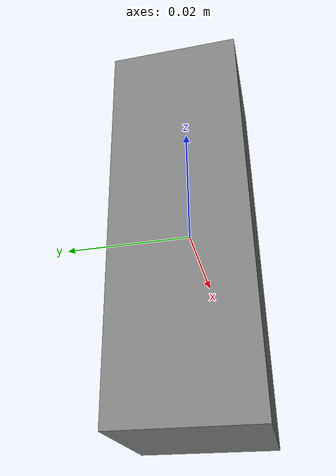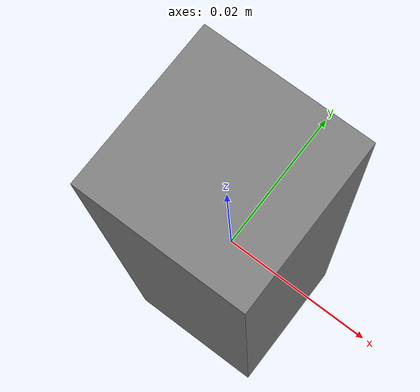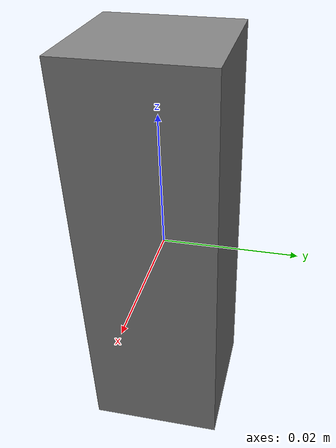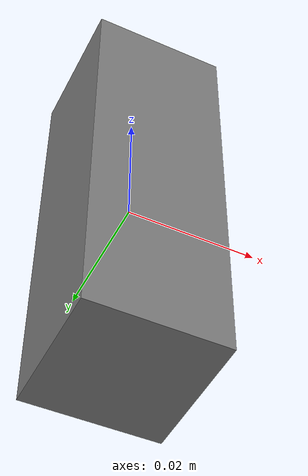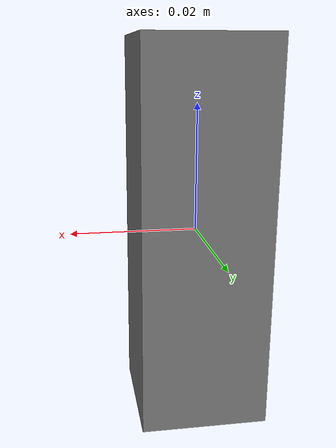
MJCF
<mujoco model="object"><option gravity="0 0 -9.81" timestep="0.001"/><worldbody><body name="body"><freejoint name="root"/><inertial pos="0 0 0" mass="0.2" diaginertia="6.666666666666667e-05 6.666666666666667e-05 1.3333333333333335e-05"/><geom name="surface" type="box" size="0.01 0.01 0.03" friction="0.3 0 0" condim="3"/></body></worldbody></mujoco>
